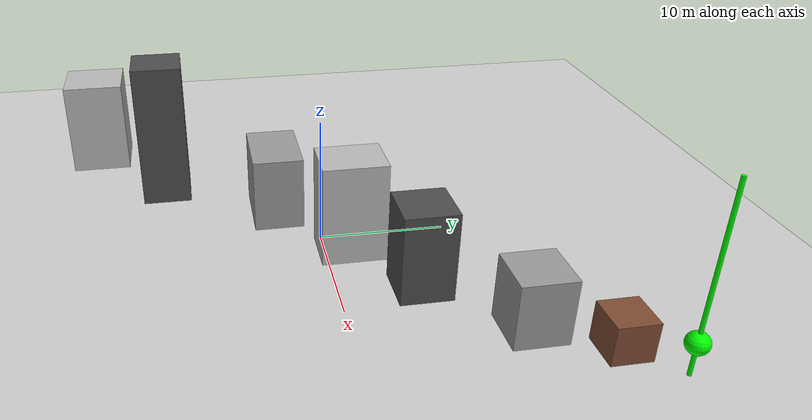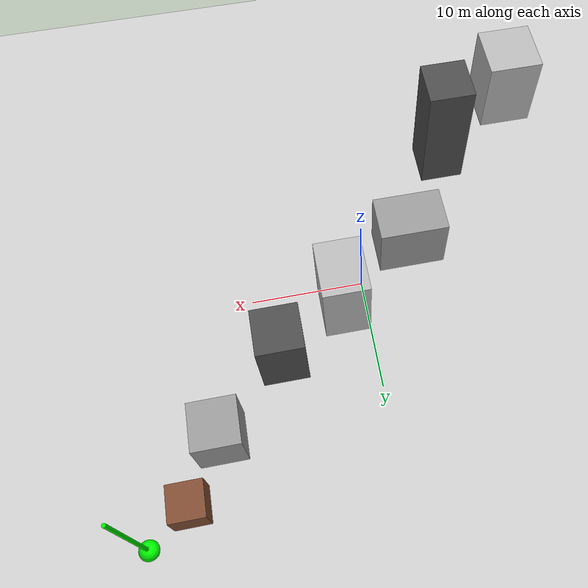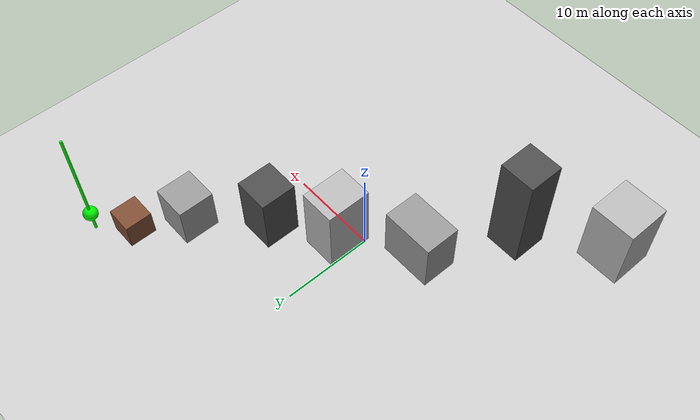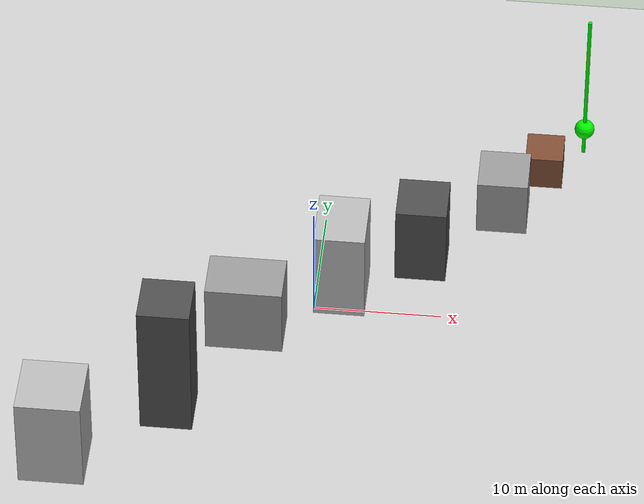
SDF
<?xml version="1.0"?>
<sdf version="1.6">
  <world name="curriculum_stage3_city">

    <physics type="ode">
      <ode>
        <solver>
          <type>quick</type>
          <iters>50</iters>
          <sor>1.3</sor>
        </solver>
        <constraints>
          <cfm>0.0</cfm>
          <erp>0.2</erp>
          <contact_max_correcting_vel>100</contact_max_correcting_vel>
          <contact_surface_layer>0.001</contact_surface_layer>
        </constraints>
      </ode>
      <real_time_update_rate>250</real_time_update_rate>
      <max_step_size>0.004</max_step_size>
    </physics>

    <light name="sun" type="directional">
      <cast_shadows>false</cast_shadows>
      <pose>0 0 50 0 0 0</pose>
      <diffuse>0.8 0.8 0.8 1</diffuse>
      <specular>0.1 0.1 0.1 1</specular>
      <attenuation>
        <range>120</range>
        <constant>0.9</constant>
        <linear>0.01</linear>
        <quadratic>0.001</quadratic>
      </attenuation>
      <direction>-0.5 0.1 -0.9</direction>
    </light>

    <scene>
      <ambient>0.6 0.6 0.6 1</ambient>
      <background>0.75 0.8 0.85 1</background>
      <shadows>false</shadows>
      <grid>false</grid>
      <origin_visual>false</origin_visual>
    </scene>

    <!-- Ground plane (Standard) -->
    <include>
      <uri>model://ground_plane</uri>
    </include>

    <!-- NO BOUNDARY WALLS - OPEN WORLD -->

    <!-- Building 1: Near spawn - large building -->
    <model name="building_1">
      <static>true</static>
      <pose>-18 -18 4 0 0 0</pose>
      <link name="link">
        <collision name="collision"><geometry><box><size>5 5 8</size></box></geometry></collision>
        <visual name="visual">
          <geometry><box><size>5 5 8</size></box></geometry>
          <material><script><uri>file://media/materials/scripts/gazebo.material</uri><name>Gazebo/Concrete</name></script></material>
        </visual>
      </link>
    </model>

    <!-- Building 2: Tall tower blocking path -->
    <model name="building_2">
      <static>true</static>
      <pose>-10 -12 6 0 0 0</pose>
      <link name="link">
        <collision name="collision"><geometry><box><size>4 4 12</size></box></geometry></collision>
        <visual name="visual">
          <geometry><box><size>4 4 12</size></box></geometry>
          <material><script><uri>file://media/materials/scripts/gazebo.material</uri><name>Gazebo/DarkGrey</name></script></material>
        </visual>
      </link>
    </model>

    <!-- Building 3: Wide building creating narrow passage -->
    <model name="building_3">
      <static>true</static>
      <pose>-5 -3 3 0 0 0</pose>
      <link name="link">
        <collision name="collision"><geometry><box><size>6 4 6</size></box></geometry></collision>
        <visual name="visual">
          <geometry><box><size>6 4 6</size></box></geometry>
          <material><script><uri>file://media/materials/scripts/gazebo.material</uri><name>Gazebo/Grey</name></script></material>
        </visual>
      </link>
    </model>

    <!-- Building 4: Center area -->
    <model name="building_4">
      <static>true</static>
      <pose>2 2 4 0 0 0</pose>
      <link name="link">
        <collision name="collision"><geometry><box><size>4 5 8</size></box></geometry></collision>
        <visual name="visual">
          <geometry><box><size>4 5 8</size></box></geometry>
          <material><script><uri>file://media/materials/scripts/gazebo.material</uri><name>Gazebo/Concrete</name></script></material>
        </visual>
      </link>
    </model>

    <!-- Building 5: Creates corridor effect -->
    <model name="building_5">
      <static>true</static>
      <pose>8 6 3.5 0 0 0</pose>
      <link name="link">
        <collision name="collision"><geometry><box><size>4 4 7</size></box></geometry></collision>
        <visual name="visual">
          <geometry><box><size>4 4 7</size></box></geometry>
          <material><script><uri>file://media/materials/scripts/gazebo.material</uri><name>Gazebo/DarkGrey</name></script></material>
        </visual>
      </link>
    </model>

    <!-- Building 6: Near target -->
    <model name="building_6">
      <static>true</static>
      <pose>14 12 2.5 0 0 0</pose>
      <link name="link">
        <collision name="collision"><geometry><box><size>4 4 5</size></box></geometry></collision>
        <visual name="visual">
          <geometry><box><size>4 4 5</size></box></geometry>
          <material><script><uri>file://media/materials/scripts/gazebo.material</uri><name>Gazebo/Grey</name></script></material>
        </visual>
      </link>
    </model>

    <!-- Building 7: Last obstacle before target -->
    <model name="building_7">
      <static>true</static>
      <pose>17 17 1.5 0 0 0</pose>
      <link name="link">
        <collision name="collision"><geometry><box><size>3 3 3</size></box></geometry></collision>
        <visual name="visual">
          <geometry><box><size>3 3 3</size></box></geometry>
          <material>
            <ambient>0.5 0.3 0.2 1</ambient>
            <diffuse>0.5 0.3 0.2 1</diffuse>
          </material>
        </visual>
      </link>
    </model>

    <!-- Training target marker (green sphere) -->
    <model name="training_goal">
      <static>true</static>
      <pose>20 20 2.5 0 0 0</pose>
      <link name="link">
        <collision name="collision">
          <geometry>
            <sphere><radius>0.8</radius></sphere>
          </geometry>
        </collision>
        <visual name="visual">
          <geometry>
            <sphere><radius>0.8</radius></sphere>
          </geometry>
          <material>
            <ambient>0 1 0 1</ambient>
            <diffuse>0 1 0 1</diffuse>
            <emissive>0 0.5 0 1</emissive>
          </material>
        </visual>
      </link>
    </model>

    <!-- Goal marker pole for better visibility -->
    <model name="goal_pole">
      <static>true</static>
      <pose>20 20 7 0 0 0</pose>
      <link name="link">
        <visual name="pole_visual">
          <geometry>
            <cylinder><radius>0.15</radius><length>14</length></cylinder>
          </geometry>
          <material>
            <ambient>0 1 0 1</ambient>
            <diffuse>0 1 0 1</diffuse>
          </material>
        </visual>
      </link>
    </model>

    <gui fullscreen="0">
      <camera name="user_camera">
        <pose>-35 -35 20 0 0.5 0.8</pose>
        <view_controller>orbit</view_controller>
      </camera>
    </gui>

  </world>
</sdf>
